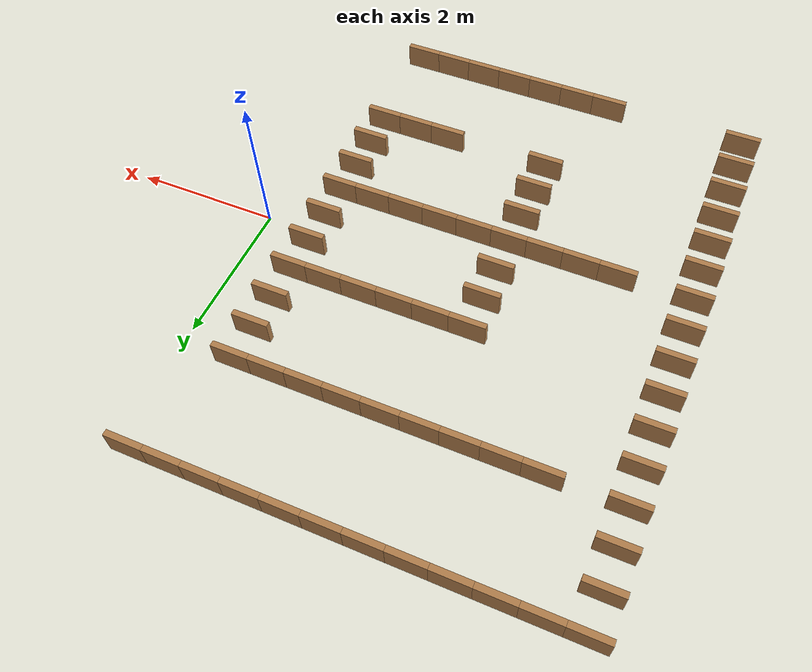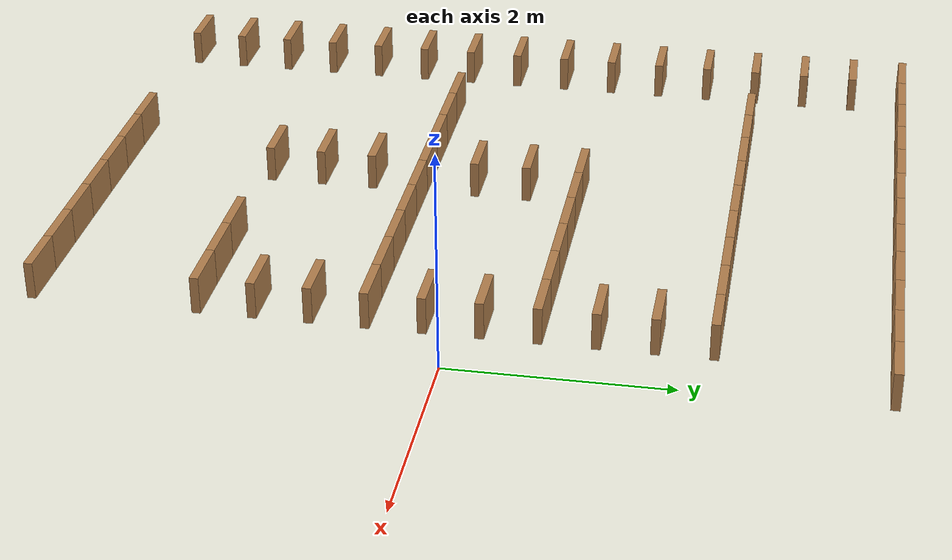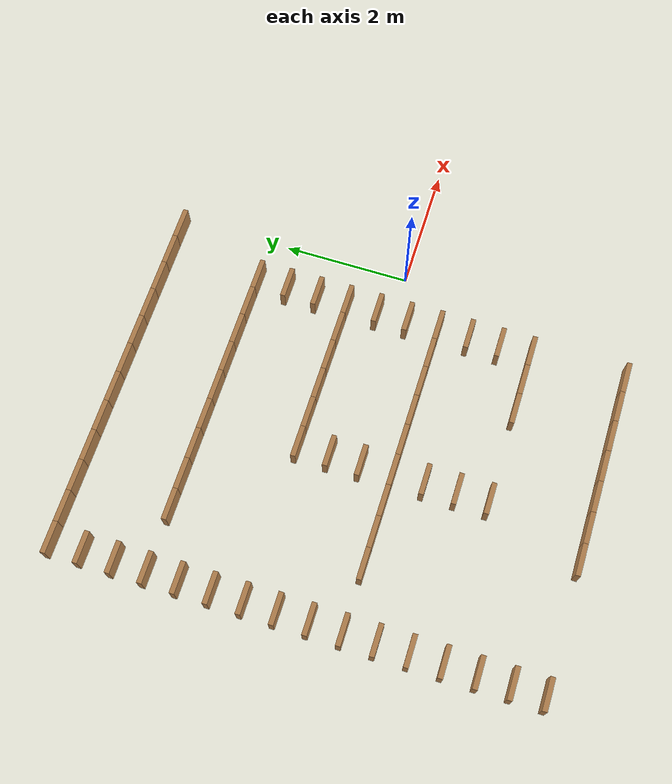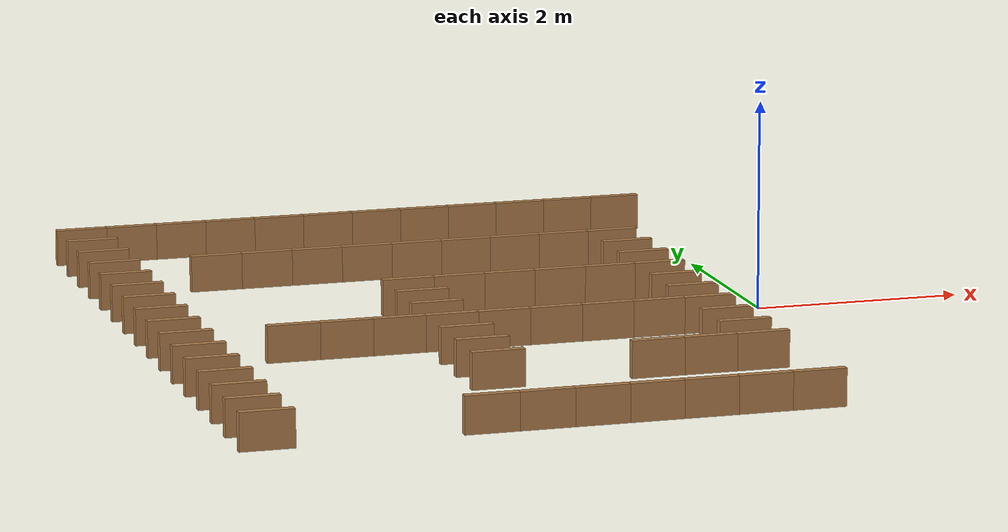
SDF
<sdf version="1.7">
 <world name="default">
  <model name="wall_r0_c0">
   <pose>-5.75 3.75 0.175 0 0 0</pose>
   <static>true</static>
   <link name="link">
    <collision name="col"><geometry><box><size>0.5 0.08 0.35</size></box></geometry></collision>
    <visual name="vis">
     <geometry><box><size>0.5 0.08 0.35</size></box></geometry>
     <material>
      <ambient>0.3 0.2 0.1 1</ambient>
      <diffuse>0.7 0.5 0.3 1</diffuse>
      <specular>0.1 0.1 0.1 1</specular>
     </material>
    </visual>
   </link>
  </model>
  <model name="wall_r0_c1">
   <pose>-5.25 3.75 0.175 0 0 0</pose>
   <static>true</static>
   <link name="link">
    <collision name="col"><geometry><box><size>0.5 0.08 0.35</size></box></geometry></collision>
    <visual name="vis">
     <geometry><box><size>0.5 0.08 0.35</size></box></geometry>
     <material>
      <ambient>0.3 0.2 0.1 1</ambient>
      <diffuse>0.7 0.5 0.3 1</diffuse>
      <specular>0.1 0.1 0.1 1</specular>
     </material>
    </visual>
   </link>
  </model>
  <model name="wall_r0_c2">
   <pose>-4.75 3.75 0.175 0 0 0</pose>
   <static>true</static>
   <link name="link">
    <collision name="col"><geometry><box><size>0.5 0.08 0.35</size></box></geometry></collision>
    <visual name="vis">
     <geometry><box><size>0.5 0.08 0.35</size></box></geometry>
     <material>
      <ambient>0.3 0.2 0.1 1</ambient>
      <diffuse>0.7 0.5 0.3 1</diffuse>
      <specular>0.1 0.1 0.1 1</specular>
     </material>
    </visual>
   </link>
  </model>
  <model name="wall_r0_c3">
   <pose>-4.25 3.75 0.175 0 0 0</pose>
   <static>true</static>
   <link name="link">
    <collision name="col"><geometry><box><size>0.5 0.08 0.35</size></box></geometry></collision>
    <visual name="vis">
     <geometry><box><size>0.5 0.08 0.35</size></box></geometry>
     <material>
      <ambient>0.3 0.2 0.1 1</ambient>
      <diffuse>0.7 0.5 0.3 1</diffuse>
      <specular>0.1 0.1 0.1 1</specular>
     </material>
    </visual>
   </link>
  </model>
  <model name="wall_r0_c4">
   <pose>-3.75 3.75 0.175 0 0 0</pose>
   <static>true</static>
   <link name="link">
    <collision name="col"><geometry><box><size>0.5 0.08 0.35</size></box></geometry></collision>
    <visual name="vis">
     <geometry><box><size>0.5 0.08 0.35</size></box></geometry>
     <material>
      <ambient>0.3 0.2 0.1 1</ambient>
      <diffuse>0.7 0.5 0.3 1</diffuse>
      <specular>0.1 0.1 0.1 1</specular>
     </material>
    </visual>
   </link>
  </model>
  <model name="wall_r0_c5">
   <pose>-3.25 3.75 0.175 0 0 0</pose>
   <static>true</static>
   <link name="link">
    <collision name="col"><geometry><box><size>0.5 0.08 0.35</size></box></geometry></collision>
    <visual name="vis">
     <geometry><box><size>0.5 0.08 0.35</size></box></geometry>
     <material>
      <ambient>0.3 0.2 0.1 1</ambient>
      <diffuse>0.7 0.5 0.3 1</diffuse>
      <specular>0.1 0.1 0.1 1</specular>
     </material>
    </visual>
   </link>
  </model>
  <model name="wall_r0_c6">
   <pose>-2.75 3.75 0.175 0 0 0</pose>
   <static>true</static>
   <link name="link">
    <collision name="col"><geometry><box><size>0.5 0.08 0.35</size></box></geometry></collision>
    <visual name="vis">
     <geometry><box><size>0.5 0.08 0.35</size></box></geometry>
     <material>
      <ambient>0.3 0.2 0.1 1</ambient>
      <diffuse>0.7 0.5 0.3 1</diffuse>
      <specular>0.1 0.1 0.1 1</specular>
     </material>
    </visual>
   </link>
  </model>
  <model name="wall_r0_c7">
   <pose>-2.25 3.75 0.175 0 0 0</pose>
   <static>true</static>
   <link name="link">
    <collision name="col"><geometry><box><size>0.5 0.08 0.35</size></box></geometry></collision>
    <visual name="vis">
     <geometry><box><size>0.5 0.08 0.35</size></box></geometry>
     <material>
      <ambient>0.3 0.2 0.1 1</ambient>
      <diffuse>0.7 0.5 0.3 1</diffuse>
      <specular>0.1 0.1 0.1 1</specular>
     </material>
    </visual>
   </link>
  </model>
  <model name="wall_r0_c8">
   <pose>-1.75 3.75 0.175 0 0 0</pose>
   <static>true</static>
   <link name="link">
    <collision name="col"><geometry><box><size>0.5 0.08 0.35</size></box></geometry></collision>
    <visual name="vis">
     <geometry><box><size>0.5 0.08 0.35</size></box></geometry>
     <material>
      <ambient>0.3 0.2 0.1 1</ambient>
      <diffuse>0.7 0.5 0.3 1</diffuse>
      <specular>0.1 0.1 0.1 1</specular>
     </material>
    </visual>
   </link>
  </model>
  <model name="wall_r0_c9">
   <pose>-1.25 3.75 0.175 0 0 0</pose>
   <static>true</static>
   <link name="link">
    <collision name="col"><geometry><box><size>0.5 0.08 0.35</size></box></geometry></collision>
    <visual name="vis">
     <geometry><box><size>0.5 0.08 0.35</size></box></geometry>
     <material>
      <ambient>0.3 0.2 0.1 1</ambient>
      <diffuse>0.7 0.5 0.3 1</diffuse>
      <specular>0.1 0.1 0.1 1</specular>
     </material>
    </visual>
   </link>
  </model>
  <model name="wall_r0_c10">
   <pose>-0.75 3.75 0.175 0 0 0</pose>
   <static>true</static>
   <link name="link">
    <collision name="col"><geometry><box><size>0.5 0.08 0.35</size></box></geometry></collision>
    <visual name="vis">
     <geometry><box><size>0.5 0.08 0.35</size></box></geometry>
     <material>
      <ambient>0.3 0.2 0.1 1</ambient>
      <diffuse>0.7 0.5 0.3 1</diffuse>
      <specular>0.1 0.1 0.1 1</specular>
     </material>
    </visual>
   </link>
  </model>
  <model name="wall_r0_c11">
   <pose>-0.25 3.75 0.175 0 0 0</pose>
   <static>true</static>
   <link name="link">
    <collision name="col"><geometry><box><size>0.5 0.08 0.35</size></box></geometry></collision>
    <visual name="vis">
     <geometry><box><size>0.5 0.08 0.35</size></box></geometry>
     <material>
      <ambient>0.3 0.2 0.1 1</ambient>
      <diffuse>0.7 0.5 0.3 1</diffuse>
      <specular>0.1 0.1 0.1 1</specular>
     </material>
    </visual>
   </link>
  </model>
  <model name="wall_r1_c0">
   <pose>-5.75 3.25 0.175 0 0 0</pose>
   <static>true</static>
   <link name="link">
    <collision name="col"><geometry><box><size>0.5 0.08 0.35</size></box></geometry></collision>
    <visual name="vis">
     <geometry><box><size>0.5 0.08 0.35</size></box></geometry>
     <material>
      <ambient>0.3 0.2 0.1 1</ambient>
      <diffuse>0.7 0.5 0.3 1</diffuse>
      <specular>0.1 0.1 0.1 1</specular>
     </material>
    </visual>
   </link>
  </model>
  <model name="wall_r2_c0">
   <pose>-5.75 2.75 0.175 0 0 0</pose>
   <static>true</static>
   <link name="link">
    <collision name="col"><geometry><box><size>0.5 0.08 0.35</size></box></geometry></collision>
    <visual name="vis">
     <geometry><box><size>0.5 0.08 0.35</size></box></geometry>
     <material>
      <ambient>0.3 0.2 0.1 1</ambient>
      <diffuse>0.7 0.5 0.3 1</diffuse>
      <specular>0.1 0.1 0.1 1</specular>
     </material>
    </visual>
   </link>
  </model>
  <model name="wall_r3_c0">
   <pose>-5.75 2.25 0.175 0 0 0</pose>
   <static>true</static>
   <link name="link">
    <collision name="col"><geometry><box><size>0.5 0.08 0.35</size></box></geometry></collision>
    <visual name="vis">
     <geometry><box><size>0.5 0.08 0.35</size></box></geometry>
     <material>
      <ambient>0.3 0.2 0.1 1</ambient>
      <diffuse>0.7 0.5 0.3 1</diffuse>
      <specular>0.1 0.1 0.1 1</specular>
     </material>
    </visual>
   </link>
  </model>
  <model name="wall_r3_c2">
   <pose>-4.75 2.25 0.175 0 0 0</pose>
   <static>true</static>
   <link name="link">
    <collision name="col"><geometry><box><size>0.5 0.08 0.35</size></box></geometry></collision>
    <visual name="vis">
     <geometry><box><size>0.5 0.08 0.35</size></box></geometry>
     <material>
      <ambient>0.3 0.2 0.1 1</ambient>
      <diffuse>0.7 0.5 0.3 1</diffuse>
      <specular>0.1 0.1 0.1 1</specular>
     </material>
    </visual>
   </link>
  </model>
  <model name="wall_r3_c3">
   <pose>-4.25 2.25 0.175 0 0 0</pose>
   <static>true</static>
   <link name="link">
    <collision name="col"><geometry><box><size>0.5 0.08 0.35</size></box></geometry></collision>
    <visual name="vis">
     <geometry><box><size>0.5 0.08 0.35</size></box></geometry>
     <material>
      <ambient>0.3 0.2 0.1 1</ambient>
      <diffuse>0.7 0.5 0.3 1</diffuse>
      <specular>0.1 0.1 0.1 1</specular>
     </material>
    </visual>
   </link>
  </model>
  <model name="wall_r3_c4">
   <pose>-3.75 2.25 0.175 0 0 0</pose>
   <static>true</static>
   <link name="link">
    <collision name="col"><geometry><box><size>0.5 0.08 0.35</size></box></geometry></collision>
    <visual name="vis">
     <geometry><box><size>0.5 0.08 0.35</size></box></geometry>
     <material>
      <ambient>0.3 0.2 0.1 1</ambient>
      <diffuse>0.7 0.5 0.3 1</diffuse>
      <specular>0.1 0.1 0.1 1</specular>
     </material>
    </visual>
   </link>
  </model>
  <model name="wall_r3_c5">
   <pose>-3.25 2.25 0.175 0 0 0</pose>
   <static>true</static>
   <link name="link">
    <collision name="col"><geometry><box><size>0.5 0.08 0.35</size></box></geometry></collision>
    <visual name="vis">
     <geometry><box><size>0.5 0.08 0.35</size></box></geometry>
     <material>
      <ambient>0.3 0.2 0.1 1</ambient>
      <diffuse>0.7 0.5 0.3 1</diffuse>
      <specular>0.1 0.1 0.1 1</specular>
     </material>
    </visual>
   </link>
  </model>
  <model name="wall_r3_c6">
   <pose>-2.75 2.25 0.175 0 0 0</pose>
   <static>true</static>
   <link name="link">
    <collision name="col"><geometry><box><size>0.5 0.08 0.35</size></box></geometry></collision>
    <visual name="vis">
     <geometry><box><size>0.5 0.08 0.35</size></box></geometry>
     <material>
      <ambient>0.3 0.2 0.1 1</ambient>
      <diffuse>0.7 0.5 0.3 1</diffuse>
      <specular>0.1 0.1 0.1 1</specular>
     </material>
    </visual>
   </link>
  </model>
  <model name="wall_r3_c7">
   <pose>-2.25 2.25 0.175 0 0 0</pose>
   <static>true</static>
   <link name="link">
    <collision name="col"><geometry><box><size>0.5 0.08 0.35</size></box></geometry></collision>
    <visual name="vis">
     <geometry><box><size>0.5 0.08 0.35</size></box></geometry>
     <material>
      <ambient>0.3 0.2 0.1 1</ambient>
      <diffuse>0.7 0.5 0.3 1</diffuse>
      <specular>0.1 0.1 0.1 1</specular>
     </material>
    </visual>
   </link>
  </model>
  <model name="wall_r3_c8">
   <pose>-1.75 2.25 0.175 0 0 0</pose>
   <static>true</static>
   <link name="link">
    <collision name="col"><geometry><box><size>0.5 0.08 0.35</size></box></geometry></collision>
    <visual name="vis">
     <geometry><box><size>0.5 0.08 0.35</size></box></geometry>
     <material>
      <ambient>0.3 0.2 0.1 1</ambient>
      <diffuse>0.7 0.5 0.3 1</diffuse>
      <specular>0.1 0.1 0.1 1</specular>
     </material>
    </visual>
   </link>
  </model>
  <model name="wall_r3_c9">
   <pose>-1.25 2.25 0.175 0 0 0</pose>
   <static>true</static>
   <link name="link">
    <collision name="col"><geometry><box><size>0.5 0.08 0.35</size></box></geometry></collision>
    <visual name="vis">
     <geometry><box><size>0.5 0.08 0.35</size></box></geometry>
     <material>
      <ambient>0.3 0.2 0.1 1</ambient>
      <diffuse>0.7 0.5 0.3 1</diffuse>
      <specular>0.1 0.1 0.1 1</specular>
     </material>
    </visual>
   </link>
  </model>
  <model name="wall_r3_c10">
   <pose>-0.75 2.25 0.175 0 0 0</pose>
   <static>true</static>
   <link name="link">
    <collision name="col"><geometry><box><size>0.5 0.08 0.35</size></box></geometry></collision>
    <visual name="vis">
     <geometry><box><size>0.5 0.08 0.35</size></box></geometry>
     <material>
      <ambient>0.3 0.2 0.1 1</ambient>
      <diffuse>0.7 0.5 0.3 1</diffuse>
      <specular>0.1 0.1 0.1 1</specular>
     </material>
    </visual>
   </link>
  </model>
  <model name="wall_r4_c0">
   <pose>-5.75 1.75 0.175 0 0 0</pose>
   <static>true</static>
   <link name="link">
    <collision name="col"><geometry><box><size>0.5 0.08 0.35</size></box></geometry></collision>
    <visual name="vis">
     <geometry><box><size>0.5 0.08 0.35</size></box></geometry>
     <material>
      <ambient>0.3 0.2 0.1 1</ambient>
      <diffuse>0.7 0.5 0.3 1</diffuse>
      <specular>0.1 0.1 0.1 1</specular>
     </material>
    </visual>
   </link>
  </model>
  <model name="wall_r4_c10">
   <pose>-0.75 1.75 0.175 0 0 0</pose>
   <static>true</static>
   <link name="link">
    <collision name="col"><geometry><box><size>0.5 0.08 0.35</size></box></geometry></collision>
    <visual name="vis">
     <geometry><box><size>0.5 0.08 0.35</size></box></geometry>
     <material>
      <ambient>0.3 0.2 0.1 1</ambient>
      <diffuse>0.7 0.5 0.3 1</diffuse>
      <specular>0.1 0.1 0.1 1</specular>
     </material>
    </visual>
   </link>
  </model>
  <model name="wall_r5_c0">
   <pose>-5.75 1.25 0.175 0 0 0</pose>
   <static>true</static>
   <link name="link">
    <collision name="col"><geometry><box><size>0.5 0.08 0.35</size></box></geometry></collision>
    <visual name="vis">
     <geometry><box><size>0.5 0.08 0.35</size></box></geometry>
     <material>
      <ambient>0.3 0.2 0.1 1</ambient>
      <diffuse>0.7 0.5 0.3 1</diffuse>
      <specular>0.1 0.1 0.1 1</specular>
     </material>
    </visual>
   </link>
  </model>
  <model name="wall_r5_c10">
   <pose>-0.75 1.25 0.175 0 0 0</pose>
   <static>true</static>
   <link name="link">
    <collision name="col"><geometry><box><size>0.5 0.08 0.35</size></box></geometry></collision>
    <visual name="vis">
     <geometry><box><size>0.5 0.08 0.35</size></box></geometry>
     <material>
      <ambient>0.3 0.2 0.1 1</ambient>
      <diffuse>0.7 0.5 0.3 1</diffuse>
      <specular>0.1 0.1 0.1 1</specular>
     </material>
    </visual>
   </link>
  </model>
  <model name="wall_r6_c0">
   <pose>-5.75 0.75 0.175 0 0 0</pose>
   <static>true</static>
   <link name="link">
    <collision name="col"><geometry><box><size>0.5 0.08 0.35</size></box></geometry></collision>
    <visual name="vis">
     <geometry><box><size>0.5 0.08 0.35</size></box></geometry>
     <material>
      <ambient>0.3 0.2 0.1 1</ambient>
      <diffuse>0.7 0.5 0.3 1</diffuse>
      <specular>0.1 0.1 0.1 1</specular>
     </material>
    </visual>
   </link>
  </model>
  <model name="wall_r6_c5">
   <pose>-3.25 0.75 0.175 0 0 0</pose>
   <static>true</static>
   <link name="link">
    <collision name="col"><geometry><box><size>0.5 0.08 0.35</size></box></geometry></collision>
    <visual name="vis">
     <geometry><box><size>0.5 0.08 0.35</size></box></geometry>
     <material>
      <ambient>0.3 0.2 0.1 1</ambient>
      <diffuse>0.7 0.5 0.3 1</diffuse>
      <specular>0.1 0.1 0.1 1</specular>
     </material>
    </visual>
   </link>
  </model>
  <model name="wall_r6_c6">
   <pose>-2.75 0.75 0.175 0 0 0</pose>
   <static>true</static>
   <link name="link">
    <collision name="col"><geometry><box><size>0.5 0.08 0.35</size></box></geometry></collision>
    <visual name="vis">
     <geometry><box><size>0.5 0.08 0.35</size></box></geometry>
     <material>
      <ambient>0.3 0.2 0.1 1</ambient>
      <diffuse>0.7 0.5 0.3 1</diffuse>
      <specular>0.1 0.1 0.1 1</specular>
     </material>
    </visual>
   </link>
  </model>
  <model name="wall_r6_c7">
   <pose>-2.25 0.75 0.175 0 0 0</pose>
   <static>true</static>
   <link name="link">
    <collision name="col"><geometry><box><size>0.5 0.08 0.35</size></box></geometry></collision>
    <visual name="vis">
     <geometry><box><size>0.5 0.08 0.35</size></box></geometry>
     <material>
      <ambient>0.3 0.2 0.1 1</ambient>
      <diffuse>0.7 0.5 0.3 1</diffuse>
      <specular>0.1 0.1 0.1 1</specular>
     </material>
    </visual>
   </link>
  </model>
  <model name="wall_r6_c8">
   <pose>-1.75 0.75 0.175 0 0 0</pose>
   <static>true</static>
   <link name="link">
    <collision name="col"><geometry><box><size>0.5 0.08 0.35</size></box></geometry></collision>
    <visual name="vis">
     <geometry><box><size>0.5 0.08 0.35</size></box></geometry>
     <material>
      <ambient>0.3 0.2 0.1 1</ambient>
      <diffuse>0.7 0.5 0.3 1</diffuse>
      <specular>0.1 0.1 0.1 1</specular>
     </material>
    </visual>
   </link>
  </model>
  <model name="wall_r6_c9">
   <pose>-1.25 0.75 0.175 0 0 0</pose>
   <static>true</static>
   <link name="link">
    <collision name="col"><geometry><box><size>0.5 0.08 0.35</size></box></geometry></collision>
    <visual name="vis">
     <geometry><box><size>0.5 0.08 0.35</size></box></geometry>
     <material>
      <ambient>0.3 0.2 0.1 1</ambient>
      <diffuse>0.7 0.5 0.3 1</diffuse>
      <specular>0.1 0.1 0.1 1</specular>
     </material>
    </visual>
   </link>
  </model>
  <model name="wall_r6_c10">
   <pose>-0.75 0.75 0.175 0 0 0</pose>
   <static>true</static>
   <link name="link">
    <collision name="col"><geometry><box><size>0.5 0.08 0.35</size></box></geometry></collision>
    <visual name="vis">
     <geometry><box><size>0.5 0.08 0.35</size></box></geometry>
     <material>
      <ambient>0.3 0.2 0.1 1</ambient>
      <diffuse>0.7 0.5 0.3 1</diffuse>
      <specular>0.1 0.1 0.1 1</specular>
     </material>
    </visual>
   </link>
  </model>
  <model name="wall_r7_c0">
   <pose>-5.75 0.25 0.175 0 0 0</pose>
   <static>true</static>
   <link name="link">
    <collision name="col"><geometry><box><size>0.5 0.08 0.35</size></box></geometry></collision>
    <visual name="vis">
     <geometry><box><size>0.5 0.08 0.35</size></box></geometry>
     <material>
      <ambient>0.3 0.2 0.1 1</ambient>
      <diffuse>0.7 0.5 0.3 1</diffuse>
      <specular>0.1 0.1 0.1 1</specular>
     </material>
    </visual>
   </link>
  </model>
  <model name="wall_r7_c5">
   <pose>-3.25 0.25 0.175 0 0 0</pose>
   <static>true</static>
   <link name="link">
    <collision name="col"><geometry><box><size>0.5 0.08 0.35</size></box></geometry></collision>
    <visual name="vis">
     <geometry><box><size>0.5 0.08 0.35</size></box></geometry>
     <material>
      <ambient>0.3 0.2 0.1 1</ambient>
      <diffuse>0.7 0.5 0.3 1</diffuse>
      <specular>0.1 0.1 0.1 1</specular>
     </material>
    </visual>
   </link>
  </model>
  <model name="wall_r7_c10">
   <pose>-0.75 0.25 0.175 0 0 0</pose>
   <static>true</static>
   <link name="link">
    <collision name="col"><geometry><box><size>0.5 0.08 0.35</size></box></geometry></collision>
    <visual name="vis">
     <geometry><box><size>0.5 0.08 0.35</size></box></geometry>
     <material>
      <ambient>0.3 0.2 0.1 1</ambient>
      <diffuse>0.7 0.5 0.3 1</diffuse>
      <specular>0.1 0.1 0.1 1</specular>
     </material>
    </visual>
   </link>
  </model>
  <model name="wall_r8_c0">
   <pose>-5.75 -0.25 0.175 0 0 0</pose>
   <static>true</static>
   <link name="link">
    <collision name="col"><geometry><box><size>0.5 0.08 0.35</size></box></geometry></collision>
    <visual name="vis">
     <geometry><box><size>0.5 0.08 0.35</size></box></geometry>
     <material>
      <ambient>0.3 0.2 0.1 1</ambient>
      <diffuse>0.7 0.5 0.3 1</diffuse>
      <specular>0.1 0.1 0.1 1</specular>
     </material>
    </visual>
   </link>
  </model>
  <model name="wall_r8_c5">
   <pose>-3.25 -0.25 0.175 0 0 0</pose>
   <static>true</static>
   <link name="link">
    <collision name="col"><geometry><box><size>0.5 0.08 0.35</size></box></geometry></collision>
    <visual name="vis">
     <geometry><box><size>0.5 0.08 0.35</size></box></geometry>
     <material>
      <ambient>0.3 0.2 0.1 1</ambient>
      <diffuse>0.7 0.5 0.3 1</diffuse>
      <specular>0.1 0.1 0.1 1</specular>
     </material>
    </visual>
   </link>
  </model>
  <model name="wall_r8_c10">
   <pose>-0.75 -0.25 0.175 0 0 0</pose>
   <static>true</static>
   <link name="link">
    <collision name="col"><geometry><box><size>0.5 0.08 0.35</size></box></geometry></collision>
    <visual name="vis">
     <geometry><box><size>0.5 0.08 0.35</size></box></geometry>
     <material>
      <ambient>0.3 0.2 0.1 1</ambient>
      <diffuse>0.7 0.5 0.3 1</diffuse>
      <specular>0.1 0.1 0.1 1</specular>
     </material>
    </visual>
   </link>
  </model>
  <model name="wall_r9_c0">
   <pose>-5.75 -0.75 0.175 0 0 0</pose>
   <static>true</static>
   <link name="link">
    <collision name="col"><geometry><box><size>0.5 0.08 0.35</size></box></geometry></collision>
    <visual name="vis">
     <geometry><box><size>0.5 0.08 0.35</size></box></geometry>
     <material>
      <ambient>0.3 0.2 0.1 1</ambient>
      <diffuse>0.7 0.5 0.3 1</diffuse>
      <specular>0.1 0.1 0.1 1</specular>
     </material>
    </visual>
   </link>
  </model>
  <model name="wall_r9_c2">
   <pose>-4.75 -0.75 0.175 0 0 0</pose>
   <static>true</static>
   <link name="link">
    <collision name="col"><geometry><box><size>0.5 0.08 0.35</size></box></geometry></collision>
    <visual name="vis">
     <geometry><box><size>0.5 0.08 0.35</size></box></geometry>
     <material>
      <ambient>0.3 0.2 0.1 1</ambient>
      <diffuse>0.7 0.5 0.3 1</diffuse>
      <specular>0.1 0.1 0.1 1</specular>
     </material>
    </visual>
   </link>
  </model>
  <model name="wall_r9_c3">
   <pose>-4.25 -0.75 0.175 0 0 0</pose>
   <static>true</static>
   <link name="link">
    <collision name="col"><geometry><box><size>0.5 0.08 0.35</size></box></geometry></collision>
    <visual name="vis">
     <geometry><box><size>0.5 0.08 0.35</size></box></geometry>
     <material>
      <ambient>0.3 0.2 0.1 1</ambient>
      <diffuse>0.7 0.5 0.3 1</diffuse>
      <specular>0.1 0.1 0.1 1</specular>
     </material>
    </visual>
   </link>
  </model>
  <model name="wall_r9_c4">
   <pose>-3.75 -0.75 0.175 0 0 0</pose>
   <static>true</static>
   <link name="link">
    <collision name="col"><geometry><box><size>0.5 0.08 0.35</size></box></geometry></collision>
    <visual name="vis">
     <geometry><box><size>0.5 0.08 0.35</size></box></geometry>
     <material>
      <ambient>0.3 0.2 0.1 1</ambient>
      <diffuse>0.7 0.5 0.3 1</diffuse>
      <specular>0.1 0.1 0.1 1</specular>
     </material>
    </visual>
   </link>
  </model>
  <model name="wall_r9_c5">
   <pose>-3.25 -0.75 0.175 0 0 0</pose>
   <static>true</static>
   <link name="link">
    <collision name="col"><geometry><box><size>0.5 0.08 0.35</size></box></geometry></collision>
    <visual name="vis">
     <geometry><box><size>0.5 0.08 0.35</size></box></geometry>
     <material>
      <ambient>0.3 0.2 0.1 1</ambient>
      <diffuse>0.7 0.5 0.3 1</diffuse>
      <specular>0.1 0.1 0.1 1</specular>
     </material>
    </visual>
   </link>
  </model>
  <model name="wall_r9_c6">
   <pose>-2.75 -0.75 0.175 0 0 0</pose>
   <static>true</static>
   <link name="link">
    <collision name="col"><geometry><box><size>0.5 0.08 0.35</size></box></geometry></collision>
    <visual name="vis">
     <geometry><box><size>0.5 0.08 0.35</size></box></geometry>
     <material>
      <ambient>0.3 0.2 0.1 1</ambient>
      <diffuse>0.7 0.5 0.3 1</diffuse>
      <specular>0.1 0.1 0.1 1</specular>
     </material>
    </visual>
   </link>
  </model>
  <model name="wall_r9_c7">
   <pose>-2.25 -0.75 0.175 0 0 0</pose>
   <static>true</static>
   <link name="link">
    <collision name="col"><geometry><box><size>0.5 0.08 0.35</size></box></geometry></collision>
    <visual name="vis">
     <geometry><box><size>0.5 0.08 0.35</size></box></geometry>
     <material>
      <ambient>0.3 0.2 0.1 1</ambient>
      <diffuse>0.7 0.5 0.3 1</diffuse>
      <specular>0.1 0.1 0.1 1</specular>
     </material>
    </visual>
   </link>
  </model>
  <model name="wall_r9_c8">
   <pose>-1.75 -0.75 0.175 0 0 0</pose>
   <static>true</static>
   <link name="link">
    <collision name="col"><geometry><box><size>0.5 0.08 0.35</size></box></geometry></collision>
    <visual name="vis">
     <geometry><box><size>0.5 0.08 0.35</size></box></geometry>
     <material>
      <ambient>0.3 0.2 0.1 1</ambient>
      <diffuse>0.7 0.5 0.3 1</diffuse>
      <specular>0.1 0.1 0.1 1</specular>
     </material>
    </visual>
   </link>
  </model>
  <model name="wall_r9_c9">
   <pose>-1.25 -0.75 0.175 0 0 0</pose>
   <static>true</static>
   <link name="link">
    <collision name="col"><geometry><box><size>0.5 0.08 0.35</size></box></geometry></collision>
    <visual name="vis">
     <geometry><box><size>0.5 0.08 0.35</size></box></geometry>
     <material>
      <ambient>0.3 0.2 0.1 1</ambient>
      <diffuse>0.7 0.5 0.3 1</diffuse>
      <specular>0.1 0.1 0.1 1</specular>
     </material>
    </visual>
   </link>
  </model>
  <model name="wall_r9_c10">
   <pose>-0.75 -0.75 0.175 0 0 0</pose>
   <static>true</static>
   <link name="link">
    <collision name="col"><geometry><box><size>0.5 0.08 0.35</size></box></geometry></collision>
    <visual name="vis">
     <geometry><box><size>0.5 0.08 0.35</size></box></geometry>
     <material>
      <ambient>0.3 0.2 0.1 1</ambient>
      <diffuse>0.7 0.5 0.3 1</diffuse>
      <specular>0.1 0.1 0.1 1</specular>
     </material>
    </visual>
   </link>
  </model>
  <model name="wall_r10_c0">
   <pose>-5.75 -1.25 0.175 0 0 0</pose>
   <static>true</static>
   <link name="link">
    <collision name="col"><geometry><box><size>0.5 0.08 0.35</size></box></geometry></collision>
    <visual name="vis">
     <geometry><box><size>0.5 0.08 0.35</size></box></geometry>
     <material>
      <ambient>0.3 0.2 0.1 1</ambient>
      <diffuse>0.7 0.5 0.3 1</diffuse>
      <specular>0.1 0.1 0.1 1</specular>
     </material>
    </visual>
   </link>
  </model>
  <model name="wall_r10_c5">
   <pose>-3.25 -1.25 0.175 0 0 0</pose>
   <static>true</static>
   <link name="link">
    <collision name="col"><geometry><box><size>0.5 0.08 0.35</size></box></geometry></collision>
    <visual name="vis">
     <geometry><box><size>0.5 0.08 0.35</size></box></geometry>
     <material>
      <ambient>0.3 0.2 0.1 1</ambient>
      <diffuse>0.7 0.5 0.3 1</diffuse>
      <specular>0.1 0.1 0.1 1</specular>
     </material>
    </visual>
   </link>
  </model>
  <model name="wall_r10_c10">
   <pose>-0.75 -1.25 0.175 0 0 0</pose>
   <static>true</static>
   <link name="link">
    <collision name="col"><geometry><box><size>0.5 0.08 0.35</size></box></geometry></collision>
    <visual name="vis">
     <geometry><box><size>0.5 0.08 0.35</size></box></geometry>
     <material>
      <ambient>0.3 0.2 0.1 1</ambient>
      <diffuse>0.7 0.5 0.3 1</diffuse>
      <specular>0.1 0.1 0.1 1</specular>
     </material>
    </visual>
   </link>
  </model>
  <model name="wall_r11_c0">
   <pose>-5.75 -1.75 0.175 0 0 0</pose>
   <static>true</static>
   <link name="link">
    <collision name="col"><geometry><box><size>0.5 0.08 0.35</size></box></geometry></collision>
    <visual name="vis">
     <geometry><box><size>0.5 0.08 0.35</size></box></geometry>
     <material>
      <ambient>0.3 0.2 0.1 1</ambient>
      <diffuse>0.7 0.5 0.3 1</diffuse>
      <specular>0.1 0.1 0.1 1</specular>
     </material>
    </visual>
   </link>
  </model>
  <model name="wall_r11_c5">
   <pose>-3.25 -1.75 0.175 0 0 0</pose>
   <static>true</static>
   <link name="link">
    <collision name="col"><geometry><box><size>0.5 0.08 0.35</size></box></geometry></collision>
    <visual name="vis">
     <geometry><box><size>0.5 0.08 0.35</size></box></geometry>
     <material>
      <ambient>0.3 0.2 0.1 1</ambient>
      <diffuse>0.7 0.5 0.3 1</diffuse>
      <specular>0.1 0.1 0.1 1</specular>
     </material>
    </visual>
   </link>
  </model>
  <model name="wall_r11_c10">
   <pose>-0.75 -1.75 0.175 0 0 0</pose>
   <static>true</static>
   <link name="link">
    <collision name="col"><geometry><box><size>0.5 0.08 0.35</size></box></geometry></collision>
    <visual name="vis">
     <geometry><box><size>0.5 0.08 0.35</size></box></geometry>
     <material>
      <ambient>0.3 0.2 0.1 1</ambient>
      <diffuse>0.7 0.5 0.3 1</diffuse>
      <specular>0.1 0.1 0.1 1</specular>
     </material>
    </visual>
   </link>
  </model>
  <model name="wall_r12_c0">
   <pose>-5.75 -2.25 0.175 0 0 0</pose>
   <static>true</static>
   <link name="link">
    <collision name="col"><geometry><box><size>0.5 0.08 0.35</size></box></geometry></collision>
    <visual name="vis">
     <geometry><box><size>0.5 0.08 0.35</size></box></geometry>
     <material>
      <ambient>0.3 0.2 0.1 1</ambient>
      <diffuse>0.7 0.5 0.3 1</diffuse>
      <specular>0.1 0.1 0.1 1</specular>
     </material>
    </visual>
   </link>
  </model>
  <model name="wall_r12_c5">
   <pose>-3.25 -2.25 0.175 0 0 0</pose>
   <static>true</static>
   <link name="link">
    <collision name="col"><geometry><box><size>0.5 0.08 0.35</size></box></geometry></collision>
    <visual name="vis">
     <geometry><box><size>0.5 0.08 0.35</size></box></geometry>
     <material>
      <ambient>0.3 0.2 0.1 1</ambient>
      <diffuse>0.7 0.5 0.3 1</diffuse>
      <specular>0.1 0.1 0.1 1</specular>
     </material>
    </visual>
   </link>
  </model>
  <model name="wall_r12_c8">
   <pose>-1.75 -2.25 0.175 0 0 0</pose>
   <static>true</static>
   <link name="link">
    <collision name="col"><geometry><box><size>0.5 0.08 0.35</size></box></geometry></collision>
    <visual name="vis">
     <geometry><box><size>0.5 0.08 0.35</size></box></geometry>
     <material>
      <ambient>0.3 0.2 0.1 1</ambient>
      <diffuse>0.7 0.5 0.3 1</diffuse>
      <specular>0.1 0.1 0.1 1</specular>
     </material>
    </visual>
   </link>
  </model>
  <model name="wall_r12_c9">
   <pose>-1.25 -2.25 0.175 0 0 0</pose>
   <static>true</static>
   <link name="link">
    <collision name="col"><geometry><box><size>0.5 0.08 0.35</size></box></geometry></collision>
    <visual name="vis">
     <geometry><box><size>0.5 0.08 0.35</size></box></geometry>
     <material>
      <ambient>0.3 0.2 0.1 1</ambient>
      <diffuse>0.7 0.5 0.3 1</diffuse>
      <specular>0.1 0.1 0.1 1</specular>
     </material>
    </visual>
   </link>
  </model>
  <model name="wall_r12_c10">
   <pose>-0.75 -2.25 0.175 0 0 0</pose>
   <static>true</static>
   <link name="link">
    <collision name="col"><geometry><box><size>0.5 0.08 0.35</size></box></geometry></collision>
    <visual name="vis">
     <geometry><box><size>0.5 0.08 0.35</size></box></geometry>
     <material>
      <ambient>0.3 0.2 0.1 1</ambient>
      <diffuse>0.7 0.5 0.3 1</diffuse>
      <specular>0.1 0.1 0.1 1</specular>
     </material>
    </visual>
   </link>
  </model>
  <model name="wall_r13_c0">
   <pose>-5.75 -2.75 0.175 0 0 0</pose>
   <static>true</static>
   <link name="link">
    <collision name="col"><geometry><box><size>0.5 0.08 0.35</size></box></geometry></collision>
    <visual name="vis">
     <geometry><box><size>0.5 0.08 0.35</size></box></geometry>
     <material>
      <ambient>0.3 0.2 0.1 1</ambient>
      <diffuse>0.7 0.5 0.3 1</diffuse>
      <specular>0.1 0.1 0.1 1</specular>
     </material>
    </visual>
   </link>
  </model>
  <model name="wall_r14_c0">
   <pose>-5.75 -3.25 0.175 0 0 0</pose>
   <static>true</static>
   <link name="link">
    <collision name="col"><geometry><box><size>0.5 0.08 0.35</size></box></geometry></collision>
    <visual name="vis">
     <geometry><box><size>0.5 0.08 0.35</size></box></geometry>
     <material>
      <ambient>0.3 0.2 0.1 1</ambient>
      <diffuse>0.7 0.5 0.3 1</diffuse>
      <specular>0.1 0.1 0.1 1</specular>
     </material>
    </visual>
   </link>
  </model>
  <model name="wall_r15_c0">
   <pose>-5.75 -3.75 0.175 0 0 0</pose>
   <static>true</static>
   <link name="link">
    <collision name="col"><geometry><box><size>0.5 0.08 0.35</size></box></geometry></collision>
    <visual name="vis">
     <geometry><box><size>0.5 0.08 0.35</size></box></geometry>
     <material>
      <ambient>0.3 0.2 0.1 1</ambient>
      <diffuse>0.7 0.5 0.3 1</diffuse>
      <specular>0.1 0.1 0.1 1</specular>
     </material>
    </visual>
   </link>
  </model>
  <model name="wall_r15_c4">
   <pose>-3.75 -3.75 0.175 0 0 0</pose>
   <static>true</static>
   <link name="link">
    <collision name="col"><geometry><box><size>0.5 0.08 0.35</size></box></geometry></collision>
    <visual name="vis">
     <geometry><box><size>0.5 0.08 0.35</size></box></geometry>
     <material>
      <ambient>0.3 0.2 0.1 1</ambient>
      <diffuse>0.7 0.5 0.3 1</diffuse>
      <specular>0.1 0.1 0.1 1</specular>
     </material>
    </visual>
   </link>
  </model>
  <model name="wall_r15_c5">
   <pose>-3.25 -3.75 0.175 0 0 0</pose>
   <static>true</static>
   <link name="link">
    <collision name="col"><geometry><box><size>0.5 0.08 0.35</size></box></geometry></collision>
    <visual name="vis">
     <geometry><box><size>0.5 0.08 0.35</size></box></geometry>
     <material>
      <ambient>0.3 0.2 0.1 1</ambient>
      <diffuse>0.7 0.5 0.3 1</diffuse>
      <specular>0.1 0.1 0.1 1</specular>
     </material>
    </visual>
   </link>
  </model>
  <model name="wall_r15_c6">
   <pose>-2.75 -3.75 0.175 0 0 0</pose>
   <static>true</static>
   <link name="link">
    <collision name="col"><geometry><box><size>0.5 0.08 0.35</size></box></geometry></collision>
    <visual name="vis">
     <geometry><box><size>0.5 0.08 0.35</size></box></geometry>
     <material>
      <ambient>0.3 0.2 0.1 1</ambient>
      <diffuse>0.7 0.5 0.3 1</diffuse>
      <specular>0.1 0.1 0.1 1</specular>
     </material>
    </visual>
   </link>
  </model>
  <model name="wall_r15_c7">
   <pose>-2.25 -3.75 0.175 0 0 0</pose>
   <static>true</static>
   <link name="link">
    <collision name="col"><geometry><box><size>0.5 0.08 0.35</size></box></geometry></collision>
    <visual name="vis">
     <geometry><box><size>0.5 0.08 0.35</size></box></geometry>
     <material>
      <ambient>0.3 0.2 0.1 1</ambient>
      <diffuse>0.7 0.5 0.3 1</diffuse>
      <specular>0.1 0.1 0.1 1</specular>
     </material>
    </visual>
   </link>
  </model>
  <model name="wall_r15_c8">
   <pose>-1.75 -3.75 0.175 0 0 0</pose>
   <static>true</static>
   <link name="link">
    <collision name="col"><geometry><box><size>0.5 0.08 0.35</size></box></geometry></collision>
    <visual name="vis">
     <geometry><box><size>0.5 0.08 0.35</size></box></geometry>
     <material>
      <ambient>0.3 0.2 0.1 1</ambient>
      <diffuse>0.7 0.5 0.3 1</diffuse>
      <specular>0.1 0.1 0.1 1</specular>
     </material>
    </visual>
   </link>
  </model>
  <model name="wall_r15_c9">
   <pose>-1.25 -3.75 0.175 0 0 0</pose>
   <static>true</static>
   <link name="link">
    <collision name="col"><geometry><box><size>0.5 0.08 0.35</size></box></geometry></collision>
    <visual name="vis">
     <geometry><box><size>0.5 0.08 0.35</size></box></geometry>
     <material>
      <ambient>0.3 0.2 0.1 1</ambient>
      <diffuse>0.7 0.5 0.3 1</diffuse>
      <specular>0.1 0.1 0.1 1</specular>
     </material>
    </visual>
   </link>
  </model>
  <model name="wall_r15_c10">
   <pose>-0.75 -3.75 0.175 0 0 0</pose>
   <static>true</static>
   <link name="link">
    <collision name="col"><geometry><box><size>0.5 0.08 0.35</size></box></geometry></collision>
    <visual name="vis">
     <geometry><box><size>0.5 0.08 0.35</size></box></geometry>
     <material>
      <ambient>0.3 0.2 0.1 1</ambient>
      <diffuse>0.7 0.5 0.3 1</diffuse>
      <specular>0.1 0.1 0.1 1</specular>
     </material>
    </visual>
   </link>
  </model>
 </world>
</sdf>
